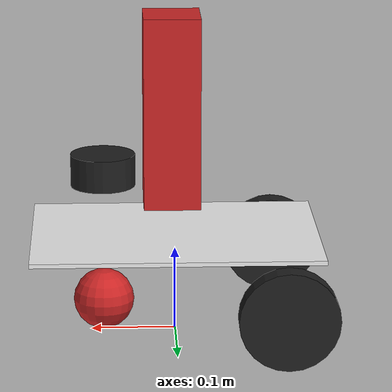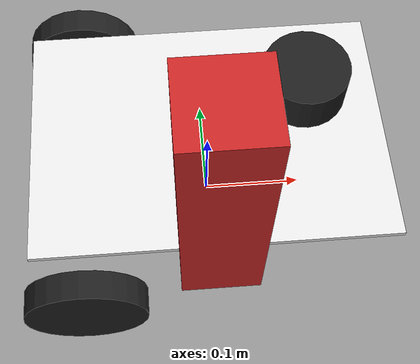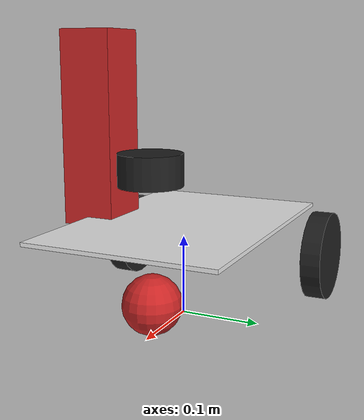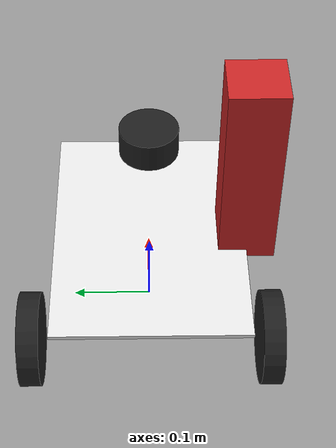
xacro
<?xml version="1.0"?>

<robot name="minicar" xmlns:xacro="http://www.ros.org/wiki/xacro">

  <xacro:property name="PI" value="3.1415926535897931"/>
	<xacro:property name="DEG_TO_RAD" value="${PI/180.0}" />

  <xacro:property name="chassisHeight" value="0.005"/>
  <xacro:property name="chassisLength" value="0.34"/>
  <xacro:property name="chassisWidth" value="0.24"/>
  <xacro:property name="chassisMass" value="1.738"/>

  <xacro:property name="casterRadius" value="0.036"/>
  <xacro:property name="casterMass" value="0.1"/>

  <xacro:property name="wheelWidth" value="0.026"/>
  <xacro:property name="wheelRadius" value="0.058"/>
  <xacro:property name="wheelPos" value="0.2"/>
  <xacro:property name="wheelMass" value="0.45"/>

  <!-- RP LIDAR specification-->
  <xacro:property name="lidarHeight" value="0.038"/>
  <xacro:property name="lidarRadius" value="0.038"/>
  <xacro:property name="lidarMass" value="0.19"/>
  <xacro:property name="laser_height" value="0.041" />
  <xacro:property name="laser_radius" value="0.038" />
  <xacro:property name="laser_mass" value="0.190" />
  <xacro:property name="laser_update_rate" value="10" />
  <xacro:property name="laser_sample" value="360" />
  <xacro:property name="laser_resolution" value="1.0" />
  <xacro:property name="laser_min_angle" value="${0*DEG_TO_RAD}" />
  <xacro:property name="laser_max_angle" value="${360*DEG_TO_RAD}" />
  <xacro:property name="laser_resolution_range" value="0.01" />
  <xacro:property name="laser_min_range" value="0.15" />
  <xacro:property name="laser_max_range" value="8.0" />

  <xacro:include filename="$(find simulation_env)/urdf/minicar_description/minicar.gazebo" />
  <xacro:include filename="$(find simulation_env)/urdf/minicar_description/materials.xacro" />
  <xacro:include filename="$(find simulation_env)/urdf/minicar_description/macros.xacro" />

  <link name="base_footprint"/>

<!--chassis-->
  <joint name="base_joint" type="fixed">
    <parent link="base_footprint"/>
    <child link="base_link"/>
		<origin rpy="0 0 0" xyz="0 0 ${2*wheelRadius+chassisHeight/2}"/>
  </joint>

  <link name="base_link">
    <collision>
      <origin xyz="0 0 0" rpy="0 0 0"/>
      <geometry>
	<box size="${chassisLength} ${chassisWidth} ${chassisHeight}"/>
      </geometry>
    </collision>

    <visual>
      <origin xyz="0 0 0" rpy="0 0 0"/>
      <geometry>
	<box size="${chassisLength} ${chassisWidth} ${chassisHeight}"/>
      </geometry>
      <material name="white"/>
    </visual>

    <inertial>
      <origin xyz="0 0 0" rpy="0 0 0"/>
      <mass value="${chassisMass}"/>
      <box_inertia m="${chassisMass}" x="${chassisLength}" y="${chassisWidth}" z="${chassisHeight}"/>
    </inertial>
  </link>

<!--Flag-->
  <joint name="fixed_flag" type="fixed">
    <parent link="base_link"/>
    <child link="flag"/>
    <origin rpy="0 0 0" xyz="0 ${-chassisWidth/2} ${2*wheelRadius}"/>
  </joint>

  <link name="flag">
    <collision>
      <origin xyz="0 0 0" rpy="0 0 0"/>
      <geometry>
	<box size="0.07 0.07 0.25"/>
      </geometry>
    </collision>

    <visual>
      <origin xyz="0 0 0" rpy="0 0 0"/>
      <geometry>
	<box size="0.07 0.07 0.25"/>
      </geometry>
      <material name="red"/>
    </visual>

    <inertial>
      <origin xyz="0 0 0" rpy="0 0 0"/>
      <mass value="0.01"/>
      <box_inertia m="0.01" x="0.07" y="0.07" z="0.25"/>
    </inertial>
  </link>

<!--caster_wheel-->
  <joint name="fixed" type="fixed">
    <parent link="base_link"/>
    <child link="caster_wheel"/>
		<origin rpy="0 0 0" xyz="0.085 0 ${casterRadius-2*wheelRadius}"/>
  </joint>

  <link name="caster_wheel">

    <collision>
      <origin xyz="0 0 0" rpy="0 0 0"/>
      <geometry>
	<sphere radius="${casterRadius}"/>
      </geometry>
    </collision>

    <visual>
      <origin xyz="0 0 0" rpy="0 0 0"/>
      <geometry>
	<sphere radius="${casterRadius}"/>
      </geometry>
      <material name="red"/>
    </visual>

    <inertial>
      <origin xyz="0 0 0" rpy="0 0 0"/>
      <mass value="${casterMass}"/>
      <sphere_inertia m="${casterMass}" r="${casterRadius}"/>
    </inertial>
  </link>

<!--wheels from macros.xacro-->
  <wheel lr="left" tY="1"/>
  <wheel lr="right" tY="-1"/>

<!--lidar-->
  <joint name="chassis_to_laser" type="fixed">
    <parent link="base_link"/>
    <child link="laser"/>
		<origin rpy="0 0 ${PI/2}" xyz="0.085 0 0.08"/>
  </joint>

  <link name="laser">

	  <collision>
			<origin xyz="0 0 0" rpy="0 0 0" />
			<geometry>
      	<cylinder length="${lidarHeight}" radius="${lidarRadius}"/>
      </geometry>
   	</collision>

    <visual>
      <origin xyz="0 0 0" rpy="0 0 0" />
      <geometry>
       <cylinder length="${lidarHeight}" radius="${lidarRadius}"/>
      </geometry>
      <material name="black"/>
    </visual>

    <inertial>
      <origin xyz="0 0 0" rpy="0 0 0" />
      <mass value="${wheelMass}"/>
      <cylinder_inertia m="${lidarMass}" r="${lidarRadius}" h="${lidarHeight}"/>
    </inertial>
  </link>

 	<sensor name="laser_sensor" type="ray" update_rate="${laser_update_rate}">
      <parent link="lidar" />
      <origin xyz="0 0 0" rpy="0 0 0"/>
      <ray>
          <horizontal>
              <sample>${laser_sample}</sample>
              <resolution>${laser_resolution}</resolution>
              <min_angle>${laser_min_angle}</min_angle>
              <max_angle>${laser_max_angle}</max_angle>
          </horizontal>

          <range>
              <min>${laser_min_range}</min>
              <max>${laser_max_range}</max>
          </range>
      </ray>
  </sensor>

  <gazebo reference="laser">
      <material>Gazebo/Grey</material>
      <sensor type="ray" name="laser_sensor">
          <pose>0 0 0 0 0 0</pose>
          <visualize>false</visualize>
          <update_rate>${laser_update_rate}</update_rate>
          <ray>
              <scan>
                  <horizontal>
                      <samples>${laser_sample}</samples>
                      <resolution>${laser_resolution}</resolution>
                      <min_angle>${laser_min_angle}</min_angle>
                      <max_angle>${laser_max_angle}</max_angle>
                  </horizontal>
              </scan>
              <range>
                  <min>${laser_min_range}</min>
                  <max>${laser_max_range}</max>
                  <resolution>${laser_resolution_range}</resolution>
              </range>
              <noise>
                  <type>gaussian</type>
                  <mean>0.0</mean>
                  <stddev>0.01</stddev>
              </noise>
          </ray>
          <plugin name="gazebo_ros_head_hokuyo_controller" filename="libgazebo_ros_laser.so">
              <topicName>scan</topicName>
              <frameName>laser</frameName>
          </plugin>
      </sensor>
  </gazebo>

</robot>

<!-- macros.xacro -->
<robot>
     <macro name="cylinder_inertia" params="m r h">
        <inertia  ixx="${m*(3*r*r+h*h)/12}" ixy = "0" ixz = "0"
                  iyy="${m*(3*r*r+h*h)/12}" iyz = "0"
                  izz="${m*r*r/2}" />
      </macro>

      <macro name="box_inertia" params="m x y z">
        <inertia  ixx="${m*(y*y+z*z)/12}" ixy = "0" ixz = "0"
                  iyy="${m*(x*x+z*z)/12}" iyz = "0"
                  izz="${m*(x*x+z*z)/12}" />
      </macro>

      <macro name="sphere_inertia" params="m r">
        <inertia  ixx="${2*m*r*r/5}" ixy = "0" ixz = "0"
                  iyy="${2*m*r*r/5}" iyz = "0"
                  izz="${2*m*r*r/5}" />
      </macro>

     <macro name="wheel" params="lr tY">

       <link name="${lr}_wheel">
        <collision>
          <origin xyz="0 0 0" rpy="0 0 0" />
          <geometry>
           <cylinder length="${wheelWidth}" radius="${wheelRadius}"/>
          </geometry>
        </collision>

        <visual>
          <origin xyz="0 0 0" rpy="0 0 0" />
          <geometry>
           <cylinder length="${wheelWidth}" radius="${wheelRadius}"/>
          </geometry>
          <material name="black"/>
        </visual>

        <inertial>
          <origin xyz="0 0 0" rpy="0 0 0" />
          <mass value="${wheelMass}"/>
          <cylinder_inertia m="${wheelMass}" r="${wheelRadius}" h="${wheelWidth}"/>
        </inertial>
       </link>

        <gazebo reference="${lr}_wheel">
          <mu1 value="1.0"/>
          <mu2 value="1.0"/>
          <kp  value="100000000.0" />
          <kd  value="1.0" />
          <fdir1 value="1 0 0"/>
          <material>Gazebo/Black</material>
        </gazebo>

       <joint name="${lr}_wheel_hinge" type="continuous">
          <parent link="base_link"/>
          <child link="${lr}_wheel"/>
          <origin xyz="-0.125 ${tY*wheelWidth+tY*chassisWidth/2} ${-wheelRadius}" rpy="${-PI/2} 0 0" />
          <axis xyz="0 0 1" rpy="0 0 0" />
          <limit effort="100" velocity="100"/>
          <joint_properties damping="0.0" friction="0.0"/>
        </joint>

      <transmission name="${lr}_trans">
        <type>transmission_interface/SimpleTransmission</type>
        <joint name="${lr}_wheel_hinge">
					<hardwareInterface>EffortJointInterface</hardwareInterface>
				</joint>
        <actuator name="${lr}Motor">
          <hardwareInterface>EffortJointInterface</hardwareInterface>
          <mechanicalReduction>10</mechanicalReduction>
        </actuator>
      </transmission>

     </macro>
</robot>
